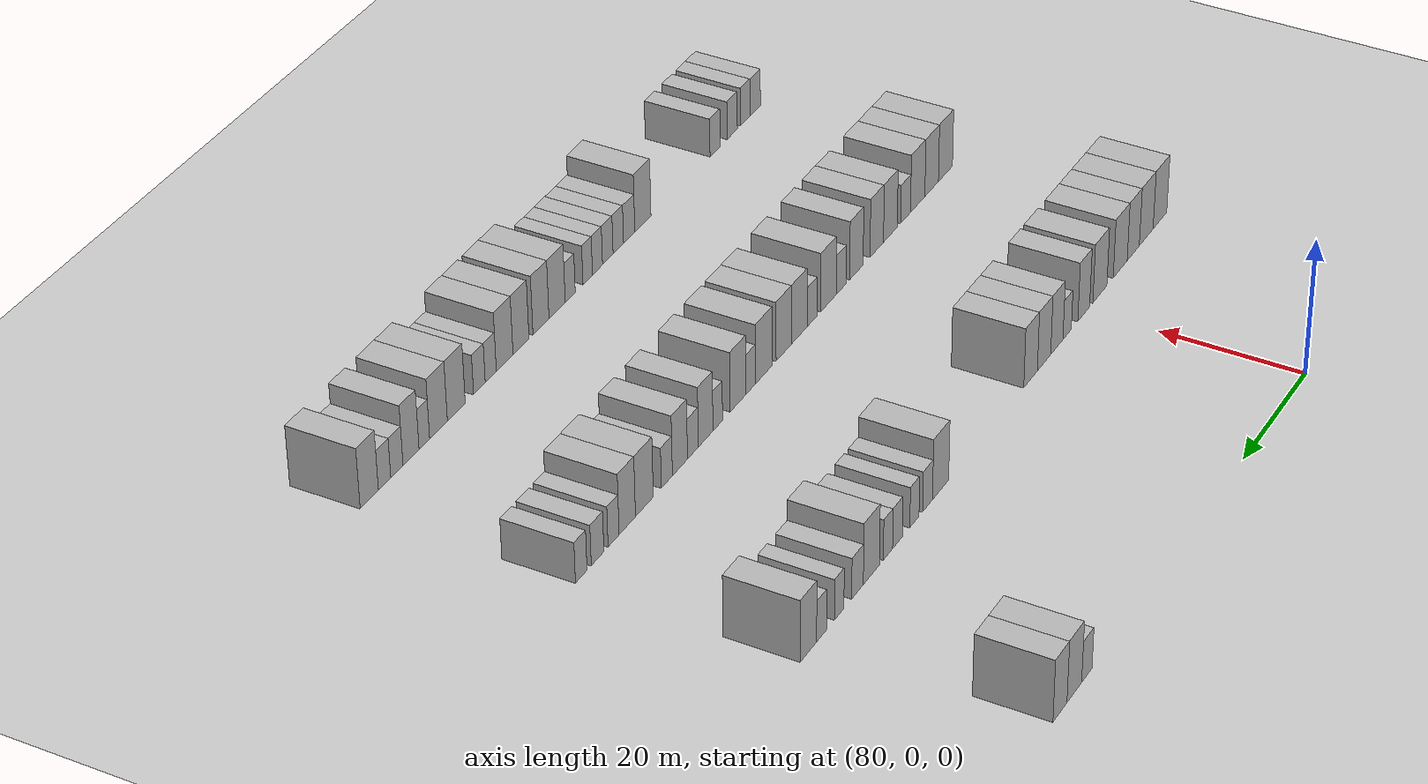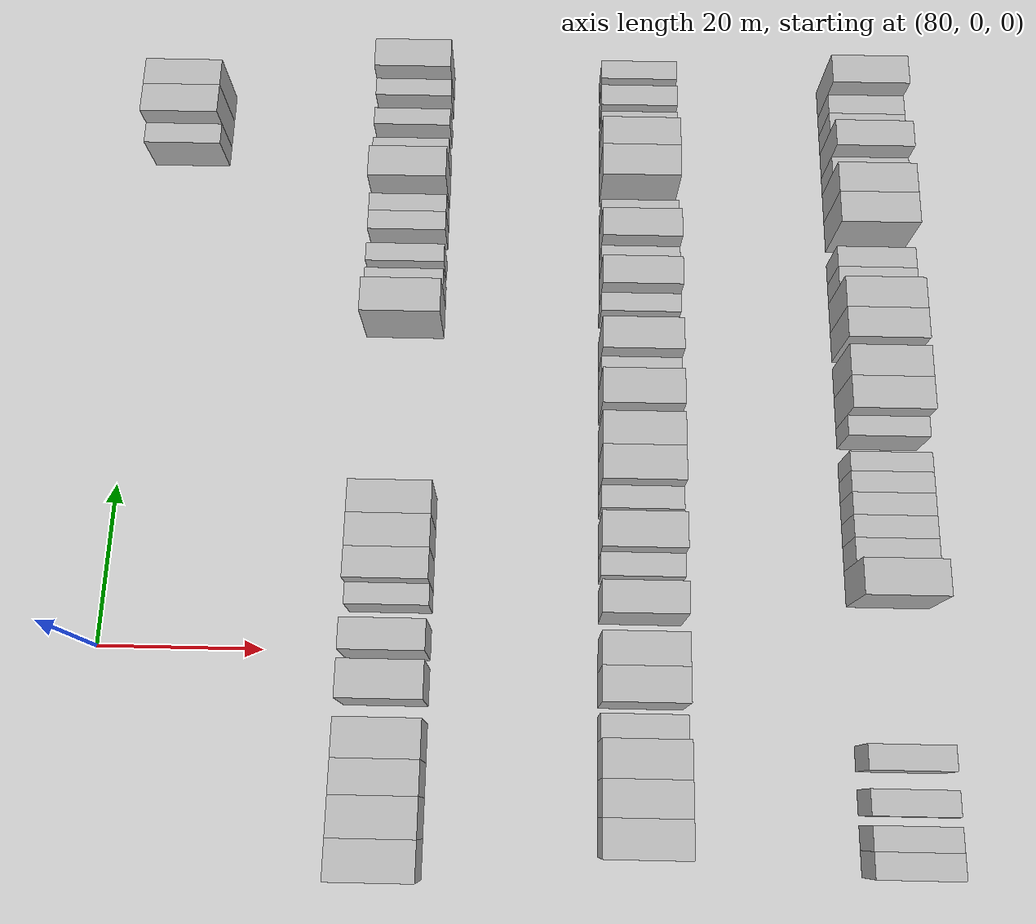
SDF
<sdf version="1.6">
 <world name="default">
  <include>
   <name>ground_plane_2</name>
   <uri>model://HANNAS_ground_plane</uri>
   <pose>100 0 0  0 0 0</pose>
  </include>
  <model name="building_594">
   <static>1</static>
   <pose>85.0000 66.3298 0 0.000000 0.000000 0.000000</pose>
   <link name="link">
    <pose>0 0 3.00 0 0 0</pose>
    <collision name="collision"><geometry><box><size>10.0000 2.8602 6.0000</size></box></geometry></collision>
    <visual name="visual">
     <cast_shadows>0</cast_shadows>
     <geometry><box><size>10.0000 2.8602 6.0000</size></box></geometry>
     <material>
      <script>
       <uri>model://HANNAS_wall/materials/scripts</uri>
       <uri>model://HANNAS_wall/materials/textures</uri>
       <name>vrc/HANNAS_wall</name>
      </script>
     </material>
    </visual>
   </link>
  </model>
  <model name="building_595">
   <static>1</static>
   <pose>85.0000 69.7634 0 0.000000 0.000000 0.000000</pose>
   <link name="link">
    <pose>0 0 4.50 0 0 0</pose>
    <collision name="collision"><geometry><box><size>10.0000 4.0069 9.0000</size></box></geometry></collision>
    <visual name="visual">
     <cast_shadows>0</cast_shadows>
     <geometry><box><size>10.0000 4.0069 9.0000</size></box></geometry>
     <material>
      <script>
       <uri>model://HANNAS_wall/materials/scripts</uri>
       <uri>model://HANNAS_wall/materials/textures</uri>
       <name>vrc/HANNAS_wall</name>
      </script>
     </material>
    </visual>
   </link>
  </model>
  <model name="building_596">
   <static>1</static>
   <pose>85.0000 73.6487 0 0.000000 0.000000 0.000000</pose>
   <link name="link">
    <pose>0 0 4.50 0 0 0</pose>
    <collision name="collision"><geometry><box><size>10.0000 3.7637 9.0000</size></box></geometry></collision>
    <visual name="visual">
     <cast_shadows>0</cast_shadows>
     <geometry><box><size>10.0000 3.7637 9.0000</size></box></geometry>
     <material>
      <script>
       <uri>model://HANNAS_wall/materials/scripts</uri>
       <uri>model://HANNAS_wall/materials/textures</uri>
       <name>vrc/HANNAS_wall</name>
      </script>
     </material>
    </visual>
   </link>
  </model>
  <model name="building_799">
   <static>1</static>
   <pose>115.0000 -23.3344 0 0.000000 0.000000 0.000000</pose>
   <link name="link">
    <pose>0 0 4.50 0 0 0</pose>
    <collision name="collision"><geometry><box><size>10.0000 4.4761 9.0000</size></box></geometry></collision>
    <visual name="visual">
     <cast_shadows>0</cast_shadows>
     <geometry><box><size>10.0000 4.4761 9.0000</size></box></geometry>
     <material>
      <script>
       <uri>model://HANNAS_wall/materials/scripts</uri>
       <uri>model://HANNAS_wall/materials/textures</uri>
       <name>vrc/HANNAS_wall</name>
      </script>
     </material>
    </visual>
   </link>
  </model>
  <model name="building_800">
   <static>1</static>
   <pose>115.0000 -18.8479 0 0.000000 0.000000 0.000000</pose>
   <link name="link">
    <pose>0 0 4.50 0 0 0</pose>
    <collision name="collision"><geometry><box><size>10.0000 4.4969 9.0000</size></box></geometry></collision>
    <visual name="visual">
     <cast_shadows>0</cast_shadows>
     <geometry><box><size>10.0000 4.4969 9.0000</size></box></geometry>
     <material>
      <script>
       <uri>model://HANNAS_wall/materials/scripts</uri>
       <uri>model://HANNAS_wall/materials/textures</uri>
       <name>vrc/HANNAS_wall</name>
      </script>
     </material>
    </visual>
   </link>
  </model>
  <model name="building_801">
   <static>1</static>
   <pose>115.0000 -14.6523 0 0.000000 0.000000 0.000000</pose>
   <link name="link">
    <pose>0 0 4.50 0 0 0</pose>
    <collision name="collision"><geometry><box><size>10.0000 3.8944 9.0000</size></box></geometry></collision>
    <visual name="visual">
     <cast_shadows>0</cast_shadows>
     <geometry><box><size>10.0000 3.8944 9.0000</size></box></geometry>
     <material>
      <script>
       <uri>model://HANNAS_wall/materials/scripts</uri>
       <uri>model://HANNAS_wall/materials/textures</uri>
       <name>vrc/HANNAS_wall</name>
      </script>
     </material>
    </visual>
   </link>
  </model>
  <model name="building_802">
   <static>1</static>
   <pose>115.0000 -10.4838 0 0.000000 0.000000 0.000000</pose>
   <link name="link">
    <pose>0 0 4.50 0 0 0</pose>
    <collision name="collision"><geometry><box><size>10.0000 4.4427 9.0000</size></box></geometry></collision>
    <visual name="visual">
     <cast_shadows>0</cast_shadows>
     <geometry><box><size>10.0000 4.4427 9.0000</size></box></geometry>
     <material>
      <script>
       <uri>model://HANNAS_wall/materials/scripts</uri>
       <uri>model://HANNAS_wall/materials/textures</uri>
       <name>vrc/HANNAS_wall</name>
      </script>
     </material>
    </visual>
   </link>
  </model>
  <model name="building_803">
   <static>1</static>
   <pose>115.0000 -4.0647 0 0.000000 0.000000 0.000000</pose>
   <link name="link">
    <pose>0 0 4.50 0 0 0</pose>
    <collision name="collision"><geometry><box><size>10.0000 4.3955 9.0000</size></box></geometry></collision>
    <visual name="visual">
     <cast_shadows>0</cast_shadows>
     <geometry><box><size>10.0000 4.3955 9.0000</size></box></geometry>
     <material>
      <script>
       <uri>model://HANNAS_wall/materials/scripts</uri>
       <uri>model://HANNAS_wall/materials/textures</uri>
       <name>vrc/HANNAS_wall</name>
      </script>
     </material>
    </visual>
   </link>
  </model>
  <model name="building_804">
   <static>1</static>
   <pose>115.0000 0.9501 0 0.000000 0.000000 0.000000</pose>
   <link name="link">
    <pose>0 0 4.50 0 0 0</pose>
    <collision name="collision"><geometry><box><size>10.0000 3.6342 9.0000</size></box></geometry></collision>
    <visual name="visual">
     <cast_shadows>0</cast_shadows>
     <geometry><box><size>10.0000 3.6342 9.0000</size></box></geometry>
     <material>
      <script>
       <uri>model://HANNAS_wall/materials/scripts</uri>
       <uri>model://HANNAS_wall/materials/textures</uri>
       <name>vrc/HANNAS_wall</name>
      </script>
     </material>
    </visual>
   </link>
  </model>
  <model name="building_805">
   <static>1</static>
   <pose>115.0000 6.0413 0 0.000000 0.000000 0.000000</pose>
   <link name="link">
    <pose>0 0 3.00 0 0 0</pose>
    <collision name="collision"><geometry><box><size>10.0000 2.5482 6.0000</size></box></geometry></collision>
    <visual name="visual">
     <cast_shadows>0</cast_shadows>
     <geometry><box><size>10.0000 2.5482 6.0000</size></box></geometry>
     <material>
      <script>
       <uri>model://HANNAS_wall/materials/scripts</uri>
       <uri>model://HANNAS_wall/materials/textures</uri>
       <name>vrc/HANNAS_wall</name>
      </script>
     </material>
    </visual>
   </link>
  </model>
  <model name="building_806">
   <static>1</static>
   <pose>115.0000 9.1581 0 0.000000 0.000000 0.000000</pose>
   <link name="link">
    <pose>0 0 4.50 0 0 0</pose>
    <collision name="collision"><geometry><box><size>10.0000 3.6853 9.0000</size></box></geometry></collision>
    <visual name="visual">
     <cast_shadows>0</cast_shadows>
     <geometry><box><size>10.0000 3.6853 9.0000</size></box></geometry>
     <material>
      <script>
       <uri>model://HANNAS_wall/materials/scripts</uri>
       <uri>model://HANNAS_wall/materials/textures</uri>
       <name>vrc/HANNAS_wall</name>
      </script>
     </material>
    </visual>
   </link>
  </model>
  <model name="building_807">
   <static>1</static>
   <pose>115.0000 12.9937 0 0.000000 0.000000 0.000000</pose>
   <link name="link">
    <pose>0 0 4.50 0 0 0</pose>
    <collision name="collision"><geometry><box><size>10.0000 3.9860 9.0000</size></box></geometry></collision>
    <visual name="visual">
     <cast_shadows>0</cast_shadows>
     <geometry><box><size>10.0000 3.9860 9.0000</size></box></geometry>
     <material>
      <script>
       <uri>model://HANNAS_wall/materials/scripts</uri>
       <uri>model://HANNAS_wall/materials/textures</uri>
       <name>vrc/HANNAS_wall</name>
      </script>
     </material>
    </visual>
   </link>
  </model>
  <model name="building_808">
   <static>1</static>
   <pose>115.0000 16.9919 0 0.000000 0.000000 0.000000</pose>
   <link name="link">
    <pose>0 0 4.50 0 0 0</pose>
    <collision name="collision"><geometry><box><size>10.0000 4.0104 9.0000</size></box></geometry></collision>
    <visual name="visual">
     <cast_shadows>0</cast_shadows>
     <geometry><box><size>10.0000 4.0104 9.0000</size></box></geometry>
     <material>
      <script>
       <uri>model://HANNAS_wall/materials/scripts</uri>
       <uri>model://HANNAS_wall/materials/textures</uri>
       <name>vrc/HANNAS_wall</name>
      </script>
     </material>
    </visual>
   </link>
  </model>
  <model name="building_809">
   <static>1</static>
   <pose>115.0000 42.6493 0 0.000000 0.000000 0.000000</pose>
   <link name="link">
    <pose>0 0 4.50 0 0 0</pose>
    <collision name="collision"><geometry><box><size>10.0000 4.4348 9.0000</size></box></geometry></collision>
    <visual name="visual">
     <cast_shadows>0</cast_shadows>
     <geometry><box><size>10.0000 4.4348 9.0000</size></box></geometry>
     <material>
      <script>
       <uri>model://HANNAS_wall/materials/scripts</uri>
       <uri>model://HANNAS_wall/materials/textures</uri>
       <name>vrc/HANNAS_wall</name>
      </script>
     </material>
    </visual>
   </link>
  </model>
  <model name="building_810">
   <static>1</static>
   <pose>115.0000 46.2065 0 0.000000 0.000000 0.000000</pose>
   <link name="link">
    <pose>0 0 3.00 0 0 0</pose>
    <collision name="collision"><geometry><box><size>10.0000 2.6796 6.0000</size></box></geometry></collision>
    <visual name="visual">
     <cast_shadows>0</cast_shadows>
     <geometry><box><size>10.0000 2.6796 6.0000</size></box></geometry>
     <material>
      <script>
       <uri>model://HANNAS_wall/materials/scripts</uri>
       <uri>model://HANNAS_wall/materials/textures</uri>
       <name>vrc/HANNAS_wall</name>
      </script>
     </material>
    </visual>
   </link>
  </model>
  <model name="building_811">
   <static>1</static>
   <pose>115.0000 49.7739 0 0.000000 0.000000 0.000000</pose>
   <link name="link">
    <pose>0 0 3.00 0 0 0</pose>
    <collision name="collision"><geometry><box><size>10.0000 2.4552 6.0000</size></box></geometry></collision>
    <visual name="visual">
     <cast_shadows>0</cast_shadows>
     <geometry><box><size>10.0000 2.4552 6.0000</size></box></geometry>
     <material>
      <script>
       <uri>model://HANNAS_wall/materials/scripts</uri>
       <uri>model://HANNAS_wall/materials/textures</uri>
       <name>vrc/HANNAS_wall</name>
      </script>
     </material>
    </visual>
   </link>
  </model>
  <model name="building_812">
   <static>1</static>
   <pose>115.0000 54.3029 0 0.000000 0.000000 0.000000</pose>
   <link name="link">
    <pose>0 0 3.00 0 0 0</pose>
    <collision name="collision"><geometry><box><size>10.0000 2.6027 6.0000</size></box></geometry></collision>
    <visual name="visual">
     <cast_shadows>0</cast_shadows>
     <geometry><box><size>10.0000 2.6027 6.0000</size></box></geometry>
     <material>
      <script>
       <uri>model://HANNAS_wall/materials/scripts</uri>
       <uri>model://HANNAS_wall/materials/textures</uri>
       <name>vrc/HANNAS_wall</name>
      </script>
     </material>
    </visual>
   </link>
  </model>
  <model name="building_813">
   <static>1</static>
   <pose>115.0000 56.8205 0 0.000000 0.000000 0.000000</pose>
   <link name="link">
    <pose>0 0 3.00 0 0 0</pose>
    <collision name="collision"><geometry><box><size>10.0000 2.4325 6.0000</size></box></geometry></collision>
    <visual name="visual">
     <cast_shadows>0</cast_shadows>
     <geometry><box><size>10.0000 2.4325 6.0000</size></box></geometry>
     <material>
      <script>
       <uri>model://HANNAS_wall/materials/scripts</uri>
       <uri>model://HANNAS_wall/materials/textures</uri>
       <name>vrc/HANNAS_wall</name>
      </script>
     </material>
    </visual>
   </link>
  </model>
  <model name="building_814">
   <static>1</static>
   <pose>115.0000 61.1457 0 0.000000 0.000000 0.000000</pose>
   <link name="link">
    <pose>0 0 4.50 0 0 0</pose>
    <collision name="collision"><geometry><box><size>10.0000 4.2178 9.0000</size></box></geometry></collision>
    <visual name="visual">
     <cast_shadows>0</cast_shadows>
     <geometry><box><size>10.0000 4.2178 9.0000</size></box></geometry>
     <material>
      <script>
       <uri>model://HANNAS_wall/materials/scripts</uri>
       <uri>model://HANNAS_wall/materials/textures</uri>
       <name>vrc/HANNAS_wall</name>
      </script>
     </material>
    </visual>
   </link>
  </model>
  <model name="building_815">
   <static>1</static>
   <pose>115.0000 64.7498 0 0.000000 0.000000 0.000000</pose>
   <link name="link">
    <pose>0 0 3.00 0 0 0</pose>
    <collision name="collision"><geometry><box><size>10.0000 2.9904 6.0000</size></box></geometry></collision>
    <visual name="visual">
     <cast_shadows>0</cast_shadows>
     <geometry><box><size>10.0000 2.9904 6.0000</size></box></geometry>
     <material>
      <script>
       <uri>model://HANNAS_wall/materials/scripts</uri>
       <uri>model://HANNAS_wall/materials/textures</uri>
       <name>vrc/HANNAS_wall</name>
      </script>
     </material>
    </visual>
   </link>
  </model>
  <model name="building_816">
   <static>1</static>
   <pose>115.0000 69.4491 0 0.000000 0.000000 0.000000</pose>
   <link name="link">
    <pose>0 0 3.00 0 0 0</pose>
    <collision name="collision"><geometry><box><size>10.0000 2.4083 6.0000</size></box></geometry></collision>
    <visual name="visual">
     <cast_shadows>0</cast_shadows>
     <geometry><box><size>10.0000 2.4083 6.0000</size></box></geometry>
     <material>
      <script>
       <uri>model://HANNAS_wall/materials/scripts</uri>
       <uri>model://HANNAS_wall/materials/textures</uri>
       <name>vrc/HANNAS_wall</name>
      </script>
     </material>
    </visual>
   </link>
  </model>
  <model name="building_817">
   <static>1</static>
   <pose>115.0000 73.8947 0 0.000000 0.000000 0.000000</pose>
   <link name="link">
    <pose>0 0 3.00 0 0 0</pose>
    <collision name="collision"><geometry><box><size>10.0000 2.4829 6.0000</size></box></geometry></collision>
    <visual name="visual">
     <cast_shadows>0</cast_shadows>
     <geometry><box><size>10.0000 2.4829 6.0000</size></box></geometry>
     <material>
      <script>
       <uri>model://HANNAS_wall/materials/scripts</uri>
       <uri>model://HANNAS_wall/materials/textures</uri>
       <name>vrc/HANNAS_wall</name>
      </script>
     </material>
    </visual>
   </link>
  </model>
  <model name="building_818">
   <static>1</static>
   <pose>115.0000 77.1675 0 0.000000 0.000000 0.000000</pose>
   <link name="link">
    <pose>0 0 4.50 0 0 0</pose>
    <collision name="collision"><geometry><box><size>10.0000 4.0628 9.0000</size></box></geometry></collision>
    <visual name="visual">
     <cast_shadows>0</cast_shadows>
     <geometry><box><size>10.0000 4.0628 9.0000</size></box></geometry>
     <material>
      <script>
       <uri>model://HANNAS_wall/materials/scripts</uri>
       <uri>model://HANNAS_wall/materials/textures</uri>
       <name>vrc/HANNAS_wall</name>
      </script>
     </material>
    </visual>
   </link>
  </model>
  <model name="building_1024">
   <static>1</static>
   <pose>145.0000 -20.5061 0 0.000000 0.000000 0.000000</pose>
   <link name="link">
    <pose>0 0 4.50 0 0 0</pose>
    <collision name="collision"><geometry><box><size>10.0000 4.2962 9.0000</size></box></geometry></collision>
    <visual name="visual">
     <cast_shadows>0</cast_shadows>
     <geometry><box><size>10.0000 4.2962 9.0000</size></box></geometry>
     <material>
      <script>
       <uri>model://HANNAS_wall/materials/scripts</uri>
       <uri>model://HANNAS_wall/materials/textures</uri>
       <name>vrc/HANNAS_wall</name>
      </script>
     </material>
    </visual>
   </link>
  </model>
  <model name="building_1025">
   <static>1</static>
   <pose>145.0000 -16.3038 0 0.000000 0.000000 0.000000</pose>
   <link name="link">
    <pose>0 0 4.50 0 0 0</pose>
    <collision name="collision"><geometry><box><size>10.0000 4.1083 9.0000</size></box></geometry></collision>
    <visual name="visual">
     <cast_shadows>0</cast_shadows>
     <geometry><box><size>10.0000 4.1083 9.0000</size></box></geometry>
     <material>
      <script>
       <uri>model://HANNAS_wall/materials/scripts</uri>
       <uri>model://HANNAS_wall/materials/textures</uri>
       <name>vrc/HANNAS_wall</name>
      </script>
     </material>
    </visual>
   </link>
  </model>
  <model name="building_1026">
   <static>1</static>
   <pose>145.0000 -12.1022 0 0.000000 0.000000 0.000000</pose>
   <link name="link">
    <pose>0 0 4.50 0 0 0</pose>
    <collision name="collision"><geometry><box><size>10.0000 4.2948 9.0000</size></box></geometry></collision>
    <visual name="visual">
     <cast_shadows>0</cast_shadows>
     <geometry><box><size>10.0000 4.2948 9.0000</size></box></geometry>
     <material>
      <script>
       <uri>model://HANNAS_wall/materials/scripts</uri>
       <uri>model://HANNAS_wall/materials/textures</uri>
       <name>vrc/HANNAS_wall</name>
      </script>
     </material>
    </visual>
   </link>
  </model>
  <model name="building_1027">
   <static>1</static>
   <pose>145.0000 -8.4955 0 0.000000 0.000000 0.000000</pose>
   <link name="link">
    <pose>0 0 3.00 0 0 0</pose>
    <collision name="collision"><geometry><box><size>10.0000 2.9185 6.0000</size></box></geometry></collision>
    <visual name="visual">
     <cast_shadows>0</cast_shadows>
     <geometry><box><size>10.0000 2.9185 6.0000</size></box></geometry>
     <material>
      <script>
       <uri>model://HANNAS_wall/materials/scripts</uri>
       <uri>model://HANNAS_wall/materials/textures</uri>
       <name>vrc/HANNAS_wall</name>
      </script>
     </material>
    </visual>
   </link>
  </model>
  <model name="building_1028">
   <static>1</static>
   <pose>145.0000 -4.0103 0 0.000000 0.000000 0.000000</pose>
   <link name="link">
    <pose>0 0 4.50 0 0 0</pose>
    <collision name="collision"><geometry><box><size>10.0000 4.0520 9.0000</size></box></geometry></collision>
    <visual name="visual">
     <cast_shadows>0</cast_shadows>
     <geometry><box><size>10.0000 4.0520 9.0000</size></box></geometry>
     <material>
      <script>
       <uri>model://HANNAS_wall/materials/scripts</uri>
       <uri>model://HANNAS_wall/materials/textures</uri>
       <name>vrc/HANNAS_wall</name>
      </script>
     </material>
    </visual>
   </link>
  </model>
  <model name="building_1029">
   <static>1</static>
   <pose>145.0000 -0.0419 0 0.000000 0.000000 0.000000</pose>
   <link name="link">
    <pose>0 0 4.50 0 0 0</pose>
    <collision name="collision"><geometry><box><size>10.0000 3.8848 9.0000</size></box></geometry></collision>
    <visual name="visual">
     <cast_shadows>0</cast_shadows>
     <geometry><box><size>10.0000 3.8848 9.0000</size></box></geometry>
     <material>
      <script>
       <uri>model://HANNAS_wall/materials/scripts</uri>
       <uri>model://HANNAS_wall/materials/textures</uri>
       <name>vrc/HANNAS_wall</name>
      </script>
     </material>
    </visual>
   </link>
  </model>
  <model name="building_1030">
   <static>1</static>
   <pose>145.0000 5.8086 0 0.000000 0.000000 0.000000</pose>
   <link name="link">
    <pose>0 0 4.50 0 0 0</pose>
    <collision name="collision"><geometry><box><size>10.0000 3.8163 9.0000</size></box></geometry></collision>
    <visual name="visual">
     <cast_shadows>0</cast_shadows>
     <geometry><box><size>10.0000 3.8163 9.0000</size></box></geometry>
     <material>
      <script>
       <uri>model://HANNAS_wall/materials/scripts</uri>
       <uri>model://HANNAS_wall/materials/textures</uri>
       <name>vrc/HANNAS_wall</name>
      </script>
     </material>
    </visual>
   </link>
  </model>
  <model name="building_1031">
   <static>1</static>
   <pose>145.0000 10.1347 0 0.000000 0.000000 0.000000</pose>
   <link name="link">
    <pose>0 0 3.00 0 0 0</pose>
    <collision name="collision"><geometry><box><size>10.0000 2.8359 6.0000</size></box></geometry></collision>
    <visual name="visual">
     <cast_shadows>0</cast_shadows>
     <geometry><box><size>10.0000 2.8359 6.0000</size></box></geometry>
     <material>
      <script>
       <uri>model://HANNAS_wall/materials/scripts</uri>
       <uri>model://HANNAS_wall/materials/textures</uri>
       <name>vrc/HANNAS_wall</name>
      </script>
     </material>
    </visual>
   </link>
  </model>
  <model name="building_1032">
   <static>1</static>
   <pose>145.0000 13.7160 0 0.000000 0.000000 0.000000</pose>
   <link name="link">
    <pose>0 0 4.50 0 0 0</pose>
    <collision name="collision"><geometry><box><size>10.0000 4.3267 9.0000</size></box></geometry></collision>
    <visual name="visual">
     <cast_shadows>0</cast_shadows>
     <geometry><box><size>10.0000 4.3267 9.0000</size></box></geometry>
     <material>
      <script>
       <uri>model://HANNAS_wall/materials/scripts</uri>
       <uri>model://HANNAS_wall/materials/textures</uri>
       <name>vrc/HANNAS_wall</name>
      </script>
     </material>
    </visual>
   </link>
  </model>
  <model name="building_1033">
   <static>1</static>
   <pose>145.0000 18.2879 0 0.000000 0.000000 0.000000</pose>
   <link name="link">
    <pose>0 0 3.00 0 0 0</pose>
    <collision name="collision"><geometry><box><size>10.0000 2.8171 6.0000</size></box></geometry></collision>
    <visual name="visual">
     <cast_shadows>0</cast_shadows>
     <geometry><box><size>10.0000 2.8171 6.0000</size></box></geometry>
     <material>
      <script>
       <uri>model://HANNAS_wall/materials/scripts</uri>
       <uri>model://HANNAS_wall/materials/textures</uri>
       <name>vrc/HANNAS_wall</name>
      </script>
     </material>
    </visual>
   </link>
  </model>
  <model name="building_1034">
   <static>1</static>
   <pose>145.0000 21.8185 0 0.000000 0.000000 0.000000</pose>
   <link name="link">
    <pose>0 0 4.50 0 0 0</pose>
    <collision name="collision"><geometry><box><size>10.0000 4.2442 9.0000</size></box></geometry></collision>
    <visual name="visual">
     <cast_shadows>0</cast_shadows>
     <geometry><box><size>10.0000 4.2442 9.0000</size></box></geometry>
     <material>
      <script>
       <uri>model://HANNAS_wall/materials/scripts</uri>
       <uri>model://HANNAS_wall/materials/textures</uri>
       <name>vrc/HANNAS_wall</name>
      </script>
     </material>
    </visual>
   </link>
  </model>
  <model name="building_1035">
   <static>1</static>
   <pose>145.0000 26.0324 0 0.000000 0.000000 0.000000</pose>
   <link name="link">
    <pose>0 0 4.50 0 0 0</pose>
    <collision name="collision"><geometry><box><size>10.0000 4.1837 9.0000</size></box></geometry></collision>
    <visual name="visual">
     <cast_shadows>0</cast_shadows>
     <geometry><box><size>10.0000 4.1837 9.0000</size></box></geometry>
     <material>
      <script>
       <uri>model://HANNAS_wall/materials/scripts</uri>
       <uri>model://HANNAS_wall/materials/textures</uri>
       <name>vrc/HANNAS_wall</name>
      </script>
     </material>
    </visual>
   </link>
  </model>
  <model name="building_1036">
   <static>1</static>
   <pose>145.0000 31.3626 0 0.000000 0.000000 0.000000</pose>
   <link name="link">
    <pose>0 0 4.50 0 0 0</pose>
    <collision name="collision"><geometry><box><size>10.0000 4.4767 9.0000</size></box></geometry></collision>
    <visual name="visual">
     <cast_shadows>0</cast_shadows>
     <geometry><box><size>10.0000 4.4767 9.0000</size></box></geometry>
     <material>
      <script>
       <uri>model://HANNAS_wall/materials/scripts</uri>
       <uri>model://HANNAS_wall/materials/textures</uri>
       <name>vrc/HANNAS_wall</name>
      </script>
     </material>
    </visual>
   </link>
  </model>
  <model name="building_1037">
   <static>1</static>
   <pose>145.0000 34.8785 0 0.000000 0.000000 0.000000</pose>
   <link name="link">
    <pose>0 0 3.00 0 0 0</pose>
    <collision name="collision"><geometry><box><size>10.0000 2.5550 6.0000</size></box></geometry></collision>
    <visual name="visual">
     <cast_shadows>0</cast_shadows>
     <geometry><box><size>10.0000 2.5550 6.0000</size></box></geometry>
     <material>
      <script>
       <uri>model://HANNAS_wall/materials/scripts</uri>
       <uri>model://HANNAS_wall/materials/textures</uri>
       <name>vrc/HANNAS_wall</name>
      </script>
     </material>
    </visual>
   </link>
  </model>
  <model name="building_1038">
   <static>1</static>
   <pose>145.0000 38.2184 0 0.000000 0.000000 0.000000</pose>
   <link name="link">
    <pose>0 0 4.50 0 0 0</pose>
    <collision name="collision"><geometry><box><size>10.0000 4.1248 9.0000</size></box></geometry></collision>
    <visual name="visual">
     <cast_shadows>0</cast_shadows>
     <geometry><box><size>10.0000 4.1248 9.0000</size></box></geometry>
     <material>
      <script>
       <uri>model://HANNAS_wall/materials/scripts</uri>
       <uri>model://HANNAS_wall/materials/textures</uri>
       <name>vrc/HANNAS_wall</name>
      </script>
     </material>
    </visual>
   </link>
  </model>
  <model name="building_1039">
   <static>1</static>
   <pose>145.0000 43.5120 0 0.000000 0.000000 0.000000</pose>
   <link name="link">
    <pose>0 0 3.00 0 0 0</pose>
    <collision name="collision"><geometry><box><size>10.0000 2.4623 6.0000</size></box></geometry></collision>
    <visual name="visual">
     <cast_shadows>0</cast_shadows>
     <geometry><box><size>10.0000 2.4623 6.0000</size></box></geometry>
     <material>
      <script>
       <uri>model://HANNAS_wall/materials/scripts</uri>
       <uri>model://HANNAS_wall/materials/textures</uri>
       <name>vrc/HANNAS_wall</name>
      </script>
     </material>
    </visual>
   </link>
  </model>
  <model name="building_1040">
   <static>1</static>
   <pose>145.0000 46.6077 0 0.000000 0.000000 0.000000</pose>
   <link name="link">
    <pose>0 0 4.50 0 0 0</pose>
    <collision name="collision"><geometry><box><size>10.0000 3.7292 9.0000</size></box></geometry></collision>
    <visual name="visual">
     <cast_shadows>0</cast_shadows>
     <geometry><box><size>10.0000 3.7292 9.0000</size></box></geometry>
     <material>
      <script>
       <uri>model://HANNAS_wall/materials/scripts</uri>
       <uri>model://HANNAS_wall/materials/textures</uri>
       <name>vrc/HANNAS_wall</name>
      </script>
     </material>
    </visual>
   </link>
  </model>
  <model name="building_1041">
   <static>1</static>
   <pose>145.0000 49.8600 0 0.000000 0.000000 0.000000</pose>
   <link name="link">
    <pose>0 0 3.00 0 0 0</pose>
    <collision name="collision"><geometry><box><size>10.0000 2.7753 6.0000</size></box></geometry></collision>
    <visual name="visual">
     <cast_shadows>0</cast_shadows>
     <geometry><box><size>10.0000 2.7753 6.0000</size></box></geometry>
     <material>
      <script>
       <uri>model://HANNAS_wall/materials/scripts</uri>
       <uri>model://HANNAS_wall/materials/textures</uri>
       <name>vrc/HANNAS_wall</name>
      </script>
     </material>
    </visual>
   </link>
  </model>
  <model name="building_1042">
   <static>1</static>
   <pose>145.0000 53.1511 0 0.000000 0.000000 0.000000</pose>
   <link name="link">
    <pose>0 0 4.50 0 0 0</pose>
    <collision name="collision"><geometry><box><size>10.0000 3.8069 9.0000</size></box></geometry></collision>
    <visual name="visual">
     <cast_shadows>0</cast_shadows>
     <geometry><box><size>10.0000 3.8069 9.0000</size></box></geometry>
     <material>
      <script>
       <uri>model://HANNAS_wall/materials/scripts</uri>
       <uri>model://HANNAS_wall/materials/textures</uri>
       <name>vrc/HANNAS_wall</name>
      </script>
     </material>
    </visual>
   </link>
  </model>
  <model name="building_1043">
   <static>1</static>
   <pose>145.0000 56.4250 0 0.000000 0.000000 0.000000</pose>
   <link name="link">
    <pose>0 0 3.00 0 0 0</pose>
    <collision name="collision"><geometry><box><size>10.0000 2.7409 6.0000</size></box></geometry></collision>
    <visual name="visual">
     <cast_shadows>0</cast_shadows>
     <geometry><box><size>10.0000 2.7409 6.0000</size></box></geometry>
     <material>
      <script>
       <uri>model://HANNAS_wall/materials/scripts</uri>
       <uri>model://HANNAS_wall/materials/textures</uri>
       <name>vrc/HANNAS_wall</name>
      </script>
     </material>
    </visual>
   </link>
  </model>
  <model name="building_1044">
   <static>1</static>
   <pose>145.0000 61.9827 0 0.000000 0.000000 0.000000</pose>
   <link name="link">
    <pose>0 0 4.50 0 0 0</pose>
    <collision name="collision"><geometry><box><size>10.0000 4.3745 9.0000</size></box></geometry></collision>
    <visual name="visual">
     <cast_shadows>0</cast_shadows>
     <geometry><box><size>10.0000 4.3745 9.0000</size></box></geometry>
     <material>
      <script>
       <uri>model://HANNAS_wall/materials/scripts</uri>
       <uri>model://HANNAS_wall/materials/textures</uri>
       <name>vrc/HANNAS_wall</name>
      </script>
     </material>
    </visual>
   </link>
  </model>
  <model name="building_1045">
   <static>1</static>
   <pose>145.0000 66.1496 0 0.000000 0.000000 0.000000</pose>
   <link name="link">
    <pose>0 0 4.50 0 0 0</pose>
    <collision name="collision"><geometry><box><size>10.0000 3.9594 9.0000</size></box></geometry></collision>
    <visual name="visual">
     <cast_shadows>0</cast_shadows>
     <geometry><box><size>10.0000 3.9594 9.0000</size></box></geometry>
     <material>
      <script>
       <uri>model://HANNAS_wall/materials/scripts</uri>
       <uri>model://HANNAS_wall/materials/textures</uri>
       <name>vrc/HANNAS_wall</name>
      </script>
     </material>
    </visual>
   </link>
  </model>
  <model name="building_1046">
   <static>1</static>
   <pose>145.0000 69.4535 0 0.000000 0.000000 0.000000</pose>
   <link name="link">
    <pose>0 0 3.00 0 0 0</pose>
    <collision name="collision"><geometry><box><size>10.0000 2.6483 6.0000</size></box></geometry></collision>
    <visual name="visual">
     <cast_shadows>0</cast_shadows>
     <geometry><box><size>10.0000 2.6483 6.0000</size></box></geometry>
     <material>
      <script>
       <uri>model://HANNAS_wall/materials/scripts</uri>
       <uri>model://HANNAS_wall/materials/textures</uri>
       <name>vrc/HANNAS_wall</name>
      </script>
     </material>
    </visual>
   </link>
  </model>
  <model name="building_1047">
   <static>1</static>
   <pose>145.0000 73.2760 0 0.000000 0.000000 0.000000</pose>
   <link name="link">
    <pose>0 0 3.00 0 0 0</pose>
    <collision name="collision"><geometry><box><size>10.0000 2.9966 6.0000</size></box></geometry></collision>
    <visual name="visual">
     <cast_shadows>0</cast_shadows>
     <geometry><box><size>10.0000 2.9966 6.0000</size></box></geometry>
     <material>
      <script>
       <uri>model://HANNAS_wall/materials/scripts</uri>
       <uri>model://HANNAS_wall/materials/textures</uri>
       <name>vrc/HANNAS_wall</name>
      </script>
     </material>
    </visual>
   </link>
  </model>
  <model name="building_1048">
   <static>1</static>
   <pose>145.0000 77.1310 0 0.000000 0.000000 0.000000</pose>
   <link name="link">
    <pose>0 0 3.00 0 0 0</pose>
    <collision name="collision"><geometry><box><size>10.0000 2.7135 6.0000</size></box></geometry></collision>
    <visual name="visual">
     <cast_shadows>0</cast_shadows>
     <geometry><box><size>10.0000 2.7135 6.0000</size></box></geometry>
     <material>
      <script>
       <uri>model://HANNAS_wall/materials/scripts</uri>
       <uri>model://HANNAS_wall/materials/textures</uri>
       <name>vrc/HANNAS_wall</name>
      </script>
     </material>
    </visual>
   </link>
  </model>
  <model name="building_1260">
   <static>1</static>
   <pose>175.0000 -22.7575 0 0.000000 0.000000 0.000000</pose>
   <link name="link">
    <pose>0 0 3.00 0 0 0</pose>
    <collision name="collision"><geometry><box><size>10.0000 2.9391 6.0000</size></box></geometry></collision>
    <visual name="visual">
     <cast_shadows>0</cast_shadows>
     <geometry><box><size>10.0000 2.9391 6.0000</size></box></geometry>
     <material>
      <script>
       <uri>model://HANNAS_wall/materials/scripts</uri>
       <uri>model://HANNAS_wall/materials/textures</uri>
       <name>vrc/HANNAS_wall</name>
      </script>
     </material>
    </visual>
   </link>
  </model>
  <model name="building_1261">
   <static>1</static>
   <pose>175.0000 -19.9183 0 0.000000 0.000000 0.000000</pose>
   <link name="link">
    <pose>0 0 3.00 0 0 0</pose>
    <collision name="collision"><geometry><box><size>10.0000 2.7393 6.0000</size></box></geometry></collision>
    <visual name="visual">
     <cast_shadows>0</cast_shadows>
     <geometry><box><size>10.0000 2.7393 6.0000</size></box></geometry>
     <material>
      <script>
       <uri>model://HANNAS_wall/materials/scripts</uri>
       <uri>model://HANNAS_wall/materials/textures</uri>
       <name>vrc/HANNAS_wall</name>
      </script>
     </material>
    </visual>
   </link>
  </model>
  <model name="building_1262">
   <static>1</static>
   <pose>175.0000 -16.0937 0 0.000000 0.000000 0.000000</pose>
   <link name="link">
    <pose>0 0 3.00 0 0 0</pose>
    <collision name="collision"><geometry><box><size>10.0000 2.9100 6.0000</size></box></geometry></collision>
    <visual name="visual">
     <cast_shadows>0</cast_shadows>
     <geometry><box><size>10.0000 2.9100 6.0000</size></box></geometry>
     <material>
      <script>
       <uri>model://HANNAS_wall/materials/scripts</uri>
       <uri>model://HANNAS_wall/materials/textures</uri>
       <name>vrc/HANNAS_wall</name>
      </script>
     </material>
    </visual>
   </link>
  </model>
  <model name="building_1263">
   <static>1</static>
   <pose>175.0000 -11.2018 0 0.000000 0.000000 0.000000</pose>
   <link name="link">
    <pose>0 0 3.00 0 0 0</pose>
    <collision name="collision"><geometry><box><size>10.0000 2.8738 6.0000</size></box></geometry></collision>
    <visual name="visual">
     <cast_shadows>0</cast_shadows>
     <geometry><box><size>10.0000 2.8738 6.0000</size></box></geometry>
     <material>
      <script>
       <uri>model://HANNAS_wall/materials/scripts</uri>
       <uri>model://HANNAS_wall/materials/textures</uri>
       <name>vrc/HANNAS_wall</name>
      </script>
     </material>
    </visual>
   </link>
  </model>
  <model name="building_1264">
   <static>1</static>
   <pose>175.0000 8.7400 0 0.000000 0.000000 0.000000</pose>
   <link name="link">
    <pose>0 0 4.50 0 0 0</pose>
    <collision name="collision"><geometry><box><size>10.0000 4.3366 9.0000</size></box></geometry></collision>
    <visual name="visual">
     <cast_shadows>0</cast_shadows>
     <geometry><box><size>10.0000 4.3366 9.0000</size></box></geometry>
     <material>
      <script>
       <uri>model://HANNAS_wall/materials/scripts</uri>
       <uri>model://HANNAS_wall/materials/textures</uri>
       <name>vrc/HANNAS_wall</name>
      </script>
     </material>
    </visual>
   </link>
  </model>
  <model name="building_1265">
   <static>1</static>
   <pose>175.0000 12.4056 0 0.000000 0.000000 0.000000</pose>
   <link name="link">
    <pose>0 0 3.00 0 0 0</pose>
    <collision name="collision"><geometry><box><size>10.0000 2.9945 6.0000</size></box></geometry></collision>
    <visual name="visual">
     <cast_shadows>0</cast_shadows>
     <geometry><box><size>10.0000 2.9945 6.0000</size></box></geometry>
     <material>
      <script>
       <uri>model://HANNAS_wall/materials/scripts</uri>
       <uri>model://HANNAS_wall/materials/textures</uri>
       <name>vrc/HANNAS_wall</name>
      </script>
     </material>
    </visual>
   </link>
  </model>
  <model name="building_1266">
   <static>1</static>
   <pose>175.0000 15.2913 0 0.000000 0.000000 0.000000</pose>
   <link name="link">
    <pose>0 0 3.00 0 0 0</pose>
    <collision name="collision"><geometry><box><size>10.0000 2.7770 6.0000</size></box></geometry></collision>
    <visual name="visual">
     <cast_shadows>0</cast_shadows>
     <geometry><box><size>10.0000 2.7770 6.0000</size></box></geometry>
     <material>
      <script>
       <uri>model://HANNAS_wall/materials/scripts</uri>
       <uri>model://HANNAS_wall/materials/textures</uri>
       <name>vrc/HANNAS_wall</name>
      </script>
     </material>
    </visual>
   </link>
  </model>
  <model name="building_1267">
   <static>1</static>
   <pose>175.0000 18.0700 0 0.000000 0.000000 0.000000</pose>
   <link name="link">
    <pose>0 0 3.00 0 0 0</pose>
    <collision name="collision"><geometry><box><size>10.0000 2.7804 6.0000</size></box></geometry></collision>
    <visual name="visual">
     <cast_shadows>0</cast_shadows>
     <geometry><box><size>10.0000 2.7804 6.0000</size></box></geometry>
     <material>
      <script>
       <uri>model://HANNAS_wall/materials/scripts</uri>
       <uri>model://HANNAS_wall/materials/textures</uri>
       <name>vrc/HANNAS_wall</name>
      </script>
     </material>
    </visual>
   </link>
  </model>
  <model name="building_1268">
   <static>1</static>
   <pose>175.0000 20.7703 0 0.000000 0.000000 0.000000</pose>
   <link name="link">
    <pose>0 0 3.00 0 0 0</pose>
    <collision name="collision"><geometry><box><size>10.0000 2.6202 6.0000</size></box></geometry></collision>
    <visual name="visual">
     <cast_shadows>0</cast_shadows>
     <geometry><box><size>10.0000 2.6202 6.0000</size></box></geometry>
     <material>
      <script>
       <uri>model://HANNAS_wall/materials/scripts</uri>
       <uri>model://HANNAS_wall/materials/textures</uri>
       <name>vrc/HANNAS_wall</name>
      </script>
     </material>
    </visual>
   </link>
  </model>
  <model name="building_1269">
   <static>1</static>
   <pose>175.0000 23.3068 0 0.000000 0.000000 0.000000</pose>
   <link name="link">
    <pose>0 0 3.00 0 0 0</pose>
    <collision name="collision"><geometry><box><size>10.0000 2.4528 6.0000</size></box></geometry></collision>
    <visual name="visual">
     <cast_shadows>0</cast_shadows>
     <geometry><box><size>10.0000 2.4528 6.0000</size></box></geometry>
     <material>
      <script>
       <uri>model://HANNAS_wall/materials/scripts</uri>
       <uri>model://HANNAS_wall/materials/textures</uri>
       <name>vrc/HANNAS_wall</name>
      </script>
     </material>
    </visual>
   </link>
  </model>
  <model name="building_1270">
   <static>1</static>
   <pose>175.0000 27.8150 0 0.000000 0.000000 0.000000</pose>
   <link name="link">
    <pose>0 0 3.00 0 0 0</pose>
    <collision name="collision"><geometry><box><size>10.0000 2.5637 6.0000</size></box></geometry></collision>
    <visual name="visual">
     <cast_shadows>0</cast_shadows>
     <geometry><box><size>10.0000 2.5637 6.0000</size></box></geometry>
     <material>
      <script>
       <uri>model://HANNAS_wall/materials/scripts</uri>
       <uri>model://HANNAS_wall/materials/textures</uri>
       <name>vrc/HANNAS_wall</name>
      </script>
     </material>
    </visual>
   </link>
  </model>
  <model name="building_1271">
   <static>1</static>
   <pose>175.0000 31.1526 0 0.000000 0.000000 0.000000</pose>
   <link name="link">
    <pose>0 0 4.50 0 0 0</pose>
    <collision name="collision"><geometry><box><size>10.0000 4.1115 9.0000</size></box></geometry></collision>
    <visual name="visual">
     <cast_shadows>0</cast_shadows>
     <geometry><box><size>10.0000 4.1115 9.0000</size></box></geometry>
     <material>
      <script>
       <uri>model://HANNAS_wall/materials/scripts</uri>
       <uri>model://HANNAS_wall/materials/textures</uri>
       <name>vrc/HANNAS_wall</name>
      </script>
     </material>
    </visual>
   </link>
  </model>
  <model name="building_1272">
   <static>1</static>
   <pose>175.0000 35.2182 0 0.000000 0.000000 0.000000</pose>
   <link name="link">
    <pose>0 0 4.50 0 0 0</pose>
    <collision name="collision"><geometry><box><size>10.0000 4.0197 9.0000</size></box></geometry></collision>
    <visual name="visual">
     <cast_shadows>0</cast_shadows>
     <geometry><box><size>10.0000 4.0197 9.0000</size></box></geometry>
     <material>
      <script>
       <uri>model://HANNAS_wall/materials/scripts</uri>
       <uri>model://HANNAS_wall/materials/textures</uri>
       <name>vrc/HANNAS_wall</name>
      </script>
     </material>
    </visual>
   </link>
  </model>
  <model name="building_1273">
   <static>1</static>
   <pose>175.0000 40.2037 0 0.000000 0.000000 0.000000</pose>
   <link name="link">
    <pose>0 0 4.50 0 0 0</pose>
    <collision name="collision"><geometry><box><size>10.0000 3.9511 9.0000</size></box></geometry></collision>
    <visual name="visual">
     <cast_shadows>0</cast_shadows>
     <geometry><box><size>10.0000 3.9511 9.0000</size></box></geometry>
     <material>
      <script>
       <uri>model://HANNAS_wall/materials/scripts</uri>
       <uri>model://HANNAS_wall/materials/textures</uri>
       <name>vrc/HANNAS_wall</name>
      </script>
     </material>
    </visual>
   </link>
  </model>
  <model name="building_1274">
   <static>1</static>
   <pose>175.0000 44.2199 0 0.000000 0.000000 0.000000</pose>
   <link name="link">
    <pose>0 0 4.50 0 0 0</pose>
    <collision name="collision"><geometry><box><size>10.0000 4.0813 9.0000</size></box></geometry></collision>
    <visual name="visual">
     <cast_shadows>0</cast_shadows>
     <geometry><box><size>10.0000 4.0813 9.0000</size></box></geometry>
     <material>
      <script>
       <uri>model://HANNAS_wall/materials/scripts</uri>
       <uri>model://HANNAS_wall/materials/textures</uri>
       <name>vrc/HANNAS_wall</name>
      </script>
     </material>
    </visual>
   </link>
  </model>
  <model name="building_1275">
   <static>1</static>
   <pose>175.0000 47.6046 0 0.000000 0.000000 0.000000</pose>
   <link name="link">
    <pose>0 0 3.00 0 0 0</pose>
    <collision name="collision"><geometry><box><size>10.0000 2.6882 6.0000</size></box></geometry></collision>
    <visual name="visual">
     <cast_shadows>0</cast_shadows>
     <geometry><box><size>10.0000 2.6882 6.0000</size></box></geometry>
     <material>
      <script>
       <uri>model://HANNAS_wall/materials/scripts</uri>
       <uri>model://HANNAS_wall/materials/textures</uri>
       <name>vrc/HANNAS_wall</name>
      </script>
     </material>
    </visual>
   </link>
  </model>
  <model name="building_1276">
   <static>1</static>
   <pose>175.0000 50.3522 0 0.000000 0.000000 0.000000</pose>
   <link name="link">
    <pose>0 0 3.00 0 0 0</pose>
    <collision name="collision"><geometry><box><size>10.0000 2.8069 6.0000</size></box></geometry></collision>
    <visual name="visual">
     <cast_shadows>0</cast_shadows>
     <geometry><box><size>10.0000 2.8069 6.0000</size></box></geometry>
     <material>
      <script>
       <uri>model://HANNAS_wall/materials/scripts</uri>
       <uri>model://HANNAS_wall/materials/textures</uri>
       <name>vrc/HANNAS_wall</name>
      </script>
     </material>
    </visual>
   </link>
  </model>
  <model name="building_1277">
   <static>1</static>
   <pose>175.0000 55.8716 0 0.000000 0.000000 0.000000</pose>
   <link name="link">
    <pose>0 0 4.50 0 0 0</pose>
    <collision name="collision"><geometry><box><size>10.0000 4.2318 9.0000</size></box></geometry></collision>
    <visual name="visual">
     <cast_shadows>0</cast_shadows>
     <geometry><box><size>10.0000 4.2318 9.0000</size></box></geometry>
     <material>
      <script>
       <uri>model://HANNAS_wall/materials/scripts</uri>
       <uri>model://HANNAS_wall/materials/textures</uri>
       <name>vrc/HANNAS_wall</name>
      </script>
     </material>
    </visual>
   </link>
  </model>
  <model name="building_1278">
   <static>1</static>
   <pose>175.0000 60.0663 0 0.000000 0.000000 0.000000</pose>
   <link name="link">
    <pose>0 0 4.50 0 0 0</pose>
    <collision name="collision"><geometry><box><size>10.0000 4.1576 9.0000</size></box></geometry></collision>
    <visual name="visual">
     <cast_shadows>0</cast_shadows>
     <geometry><box><size>10.0000 4.1576 9.0000</size></box></geometry>
     <material>
      <script>
       <uri>model://HANNAS_wall/materials/scripts</uri>
       <uri>model://HANNAS_wall/materials/textures</uri>
       <name>vrc/HANNAS_wall</name>
      </script>
     </material>
    </visual>
   </link>
  </model>
  <model name="building_1279">
   <static>1</static>
   <pose>175.0000 63.3723 0 0.000000 0.000000 0.000000</pose>
   <link name="link">
    <pose>0 0 3.00 0 0 0</pose>
    <collision name="collision"><geometry><box><size>10.0000 2.4544 6.0000</size></box></geometry></collision>
    <visual name="visual">
     <cast_shadows>0</cast_shadows>
     <geometry><box><size>10.0000 2.4544 6.0000</size></box></geometry>
     <material>
      <script>
       <uri>model://HANNAS_wall/materials/scripts</uri>
       <uri>model://HANNAS_wall/materials/textures</uri>
       <name>vrc/HANNAS_wall</name>
      </script>
     </material>
    </visual>
   </link>
  </model>
  <model name="building_1280">
   <static>1</static>
   <pose>175.0000 66.4421 0 0.000000 0.000000 0.000000</pose>
   <link name="link">
    <pose>0 0 4.50 0 0 0</pose>
    <collision name="collision"><geometry><box><size>10.0000 3.6852 9.0000</size></box></geometry></collision>
    <visual name="visual">
     <cast_shadows>0</cast_shadows>
     <geometry><box><size>10.0000 3.6852 9.0000</size></box></geometry>
     <material>
      <script>
       <uri>model://HANNAS_wall/materials/scripts</uri>
       <uri>model://HANNAS_wall/materials/textures</uri>
       <name>vrc/HANNAS_wall</name>
      </script>
     </material>
    </visual>
   </link>
  </model>
  <model name="building_1281">
   <static>1</static>
   <pose>175.0000 69.6868 0 0.000000 0.000000 0.000000</pose>
   <link name="link">
    <pose>0 0 3.00 0 0 0</pose>
    <collision name="collision"><geometry><box><size>10.0000 2.8043 6.0000</size></box></geometry></collision>
    <visual name="visual">
     <cast_shadows>0</cast_shadows>
     <geometry><box><size>10.0000 2.8043 6.0000</size></box></geometry>
     <material>
      <script>
       <uri>model://HANNAS_wall/materials/scripts</uri>
       <uri>model://HANNAS_wall/materials/textures</uri>
       <name>vrc/HANNAS_wall</name>
      </script>
     </material>
    </visual>
   </link>
  </model>
  <model name="building_1282">
   <static>1</static>
   <pose>175.0000 72.4849 0 0.000000 0.000000 0.000000</pose>
   <link name="link">
    <pose>0 0 3.00 0 0 0</pose>
    <collision name="collision"><geometry><box><size>10.0000 2.7919 6.0000</size></box></geometry></collision>
    <visual name="visual">
     <cast_shadows>0</cast_shadows>
     <geometry><box><size>10.0000 2.7919 6.0000</size></box></geometry>
     <material>
      <script>
       <uri>model://HANNAS_wall/materials/scripts</uri>
       <uri>model://HANNAS_wall/materials/textures</uri>
       <name>vrc/HANNAS_wall</name>
      </script>
     </material>
    </visual>
   </link>
  </model>
  <model name="building_1283">
   <static>1</static>
   <pose>175.0000 75.9233 0 0.000000 0.000000 0.000000</pose>
   <link name="link">
    <pose>0 0 4.50 0 0 0</pose>
    <collision name="collision"><geometry><box><size>10.0000 4.0849 9.0000</size></box></geometry></collision>
    <visual name="visual">
     <cast_shadows>0</cast_shadows>
     <geometry><box><size>10.0000 4.0849 9.0000</size></box></geometry>
     <material>
      <script>
       <uri>model://HANNAS_wall/materials/scripts</uri>
       <uri>model://HANNAS_wall/materials/textures</uri>
       <name>vrc/HANNAS_wall</name>
      </script>
     </material>
    </visual>
   </link>
  </model>
 </world>
</sdf>
